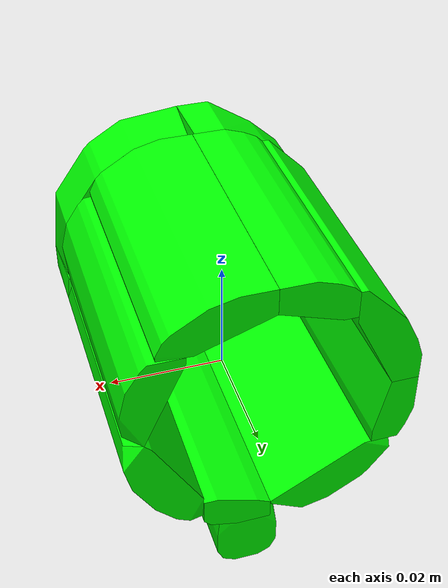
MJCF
<mujoco model="shapenet9-10">
  <asset>
    <mesh file="meshes/shapenet9-10/shapenet9-10_0.stl" name="shapenet9-10_0" scale="0.1 0.1 0.1"/>
    <mesh file="meshes/shapenet9-10/shapenet9-10_1.stl" name="shapenet9-10_1" scale="0.1 0.1 0.1"/>
    <mesh file="meshes/shapenet9-10/shapenet9-10_2.stl" name="shapenet9-10_2" scale="0.1 0.1 0.1"/>
    <mesh file="meshes/shapenet9-10/shapenet9-10_3.stl" name="shapenet9-10_3" scale="0.1 0.1 0.1"/>
    <mesh file="meshes/shapenet9-10/shapenet9-10_4.stl" name="shapenet9-10_4" scale="0.1 0.1 0.1"/>
    <mesh file="meshes/shapenet9-10/shapenet9-10_5.stl" name="shapenet9-10_5" scale="0.1 0.1 0.1"/>
    <mesh file="meshes/shapenet9-10/shapenet9-10_6.stl" name="shapenet9-10_6" scale="0.1 0.1 0.1"/>
    <mesh file="meshes/shapenet9-10/shapenet9-10_7.stl" name="shapenet9-10_7" scale="0.1 0.1 0.1"/>
    <mesh file="meshes/shapenet9-10/shapenet9-10_8.stl" name="shapenet9-10_8" scale="0.1 0.1 0.1"/>
    <mesh file="meshes/shapenet9-10/shapenet9-10_9.stl" name="shapenet9-10_9" scale="0.1 0.1 0.1"/>
    <mesh file="meshes/shapenet9-10/shapenet9-10_10.stl" name="shapenet9-10_10" scale="0.1 0.1 0.1"/>
    <mesh file="meshes/shapenet9-10/shapenet9-10_11.stl" name="shapenet9-10_11" scale="0.1 0.1 0.1"/>
    <mesh file="meshes/shapenet9-10/shapenet9-10_12.stl" name="shapenet9-10_12" scale="0.1 0.1 0.1"/>
    <mesh file="meshes/shapenet9-10/shapenet9-10_13.stl" name="shapenet9-10_13" scale="0.1 0.1 0.1"/>
  </asset>
  <worldbody>
    <body>
      <body name="collision">
        <geom pos="0 0 0" mesh="shapenet9-10_0" type="mesh" solimp="0.998 0.998 0.001" solref="0.001 1" density="100" friction="0.95 0.3 0.1" rgba="0 1 0 1" group="1" condim="4"/>
        <geom pos="0 0 0" mesh="shapenet9-10_1" type="mesh" solimp="0.998 0.998 0.001" solref="0.001 1" density="100" friction="0.95 0.3 0.1" rgba="0 1 0 1" group="1" condim="4"/>
        <geom pos="0 0 0" mesh="shapenet9-10_2" type="mesh" solimp="0.998 0.998 0.001" solref="0.001 1" density="100" friction="0.95 0.3 0.1" rgba="0 1 0 1" group="1" condim="4"/>
        <geom pos="0 0 0" mesh="shapenet9-10_3" type="mesh" solimp="0.998 0.998 0.001" solref="0.001 1" density="100" friction="0.95 0.3 0.1" rgba="0 1 0 1" group="1" condim="4"/>
        <geom pos="0 0 0" mesh="shapenet9-10_4" type="mesh" solimp="0.998 0.998 0.001" solref="0.001 1" density="100" friction="0.95 0.3 0.1" rgba="0 1 0 1" group="1" condim="4"/>
        <geom pos="0 0 0" mesh="shapenet9-10_5" type="mesh" solimp="0.998 0.998 0.001" solref="0.001 1" density="100" friction="0.95 0.3 0.1" rgba="0 1 0 1" group="1" condim="4"/>
        <geom pos="0 0 0" mesh="shapenet9-10_6" type="mesh" solimp="0.998 0.998 0.001" solref="0.001 1" density="100" friction="0.95 0.3 0.1" rgba="0 1 0 1" group="1" condim="4"/>
        <geom pos="0 0 0" mesh="shapenet9-10_7" type="mesh" solimp="0.998 0.998 0.001" solref="0.001 1" density="100" friction="0.95 0.3 0.1" rgba="0 1 0 1" group="1" condim="4"/>
        <geom pos="0 0 0" mesh="shapenet9-10_8" type="mesh" solimp="0.998 0.998 0.001" solref="0.001 1" density="100" friction="0.95 0.3 0.1" rgba="0 1 0 1" group="1" condim="4"/>
        <geom pos="0 0 0" mesh="shapenet9-10_9" type="mesh" solimp="0.998 0.998 0.001" solref="0.001 1" density="100" friction="0.95 0.3 0.1" rgba="0 1 0 1" group="1" condim="4"/>
        <geom pos="0 0 0" mesh="shapenet9-10_10" type="mesh" solimp="0.998 0.998 0.001" solref="0.001 1" density="100" friction="0.95 0.3 0.1" rgba="0 1 0 1" group="1" condim="4"/>
        <geom pos="0 0 0" mesh="shapenet9-10_11" type="mesh" solimp="0.998 0.998 0.001" solref="0.001 1" density="100" friction="0.95 0.3 0.1" rgba="0 1 0 1" group="1" condim="4"/>
        <geom pos="0 0 0" mesh="shapenet9-10_12" type="mesh" solimp="0.998 0.998 0.001" solref="0.001 1" density="100" friction="0.95 0.3 0.1" rgba="0 1 0 1" group="1" condim="4"/>
        <geom pos="0 0 0" mesh="shapenet9-10_13" type="mesh" solimp="0.998 0.998 0.001" solref="0.001 1" density="100" friction="0.95 0.3 0.1" rgba="0 1 0 1" group="1" condim="4"/>
      </body>
      <body name="visual">
        <geom pos="0 0 0" mesh="shapenet9-10_0" type="mesh" rgba="0 1 0 1" conaffinity="0" contype="0" group="0" mass="0.0001"/>
        <geom pos="0 0 0" mesh="shapenet9-10_1" type="mesh" rgba="0 1 0 1" conaffinity="0" contype="0" group="0" mass="0.0001"/>
        <geom pos="0 0 0" mesh="shapenet9-10_2" type="mesh" rgba="0 1 0 1" conaffinity="0" contype="0" group="0" mass="0.0001"/>
        <geom pos="0 0 0" mesh="shapenet9-10_3" type="mesh" rgba="0 1 0 1" conaffinity="0" contype="0" group="0" mass="0.0001"/>
        <geom pos="0 0 0" mesh="shapenet9-10_4" type="mesh" rgba="0 1 0 1" conaffinity="0" contype="0" group="0" mass="0.0001"/>
        <geom pos="0 0 0" mesh="shapenet9-10_5" type="mesh" rgba="0 1 0 1" conaffinity="0" contype="0" group="0" mass="0.0001"/>
        <geom pos="0 0 0" mesh="shapenet9-10_6" type="mesh" rgba="0 1 0 1" conaffinity="0" contype="0" group="0" mass="0.0001"/>
        <geom pos="0 0 0" mesh="shapenet9-10_7" type="mesh" rgba="0 1 0 1" conaffinity="0" contype="0" group="0" mass="0.0001"/>
        <geom pos="0 0 0" mesh="shapenet9-10_8" type="mesh" rgba="0 1 0 1" conaffinity="0" contype="0" group="0" mass="0.0001"/>
        <geom pos="0 0 0" mesh="shapenet9-10_9" type="mesh" rgba="0 1 0 1" conaffinity="0" contype="0" group="0" mass="0.0001"/>
        <geom pos="0 0 0" mesh="shapenet9-10_10" type="mesh" rgba="0 1 0 1" conaffinity="0" contype="0" group="0" mass="0.0001"/>
        <geom pos="0 0 0" mesh="shapenet9-10_11" type="mesh" rgba="0 1 0 1" conaffinity="0" contype="0" group="0" mass="0.0001"/>
        <geom pos="0 0 0" mesh="shapenet9-10_12" type="mesh" rgba="0 1 0 1" conaffinity="0" contype="0" group="0" mass="0.0001"/>
        <geom pos="0 0 0" mesh="shapenet9-10_13" type="mesh" rgba="0 1 0 1" conaffinity="0" contype="0" group="0" mass="0.0001"/>
      </body>
      <site rgba="0 0 0 0" size="0.005" pos="0 0 -0.06" name="bottom_site"/>
      <site rgba="0 0 0 0" size="0.005" pos="0 0 0.04" name="top_site"/>
      <site rgba="0 0 0 0" size="0.005" pos="0.025 0.025 0" name="horizontal_radius_site"/>
    </body>
  </worldbody>
</mujoco>
